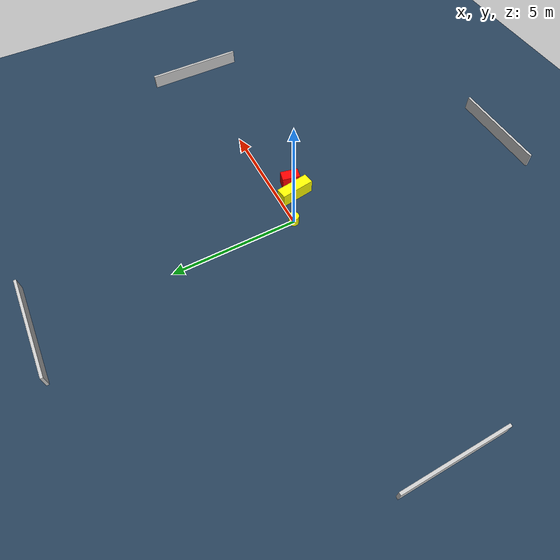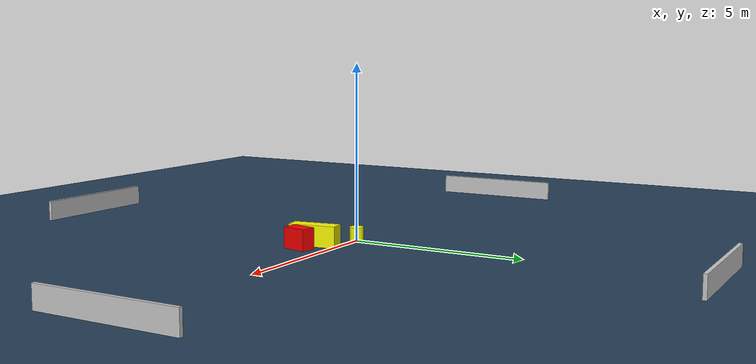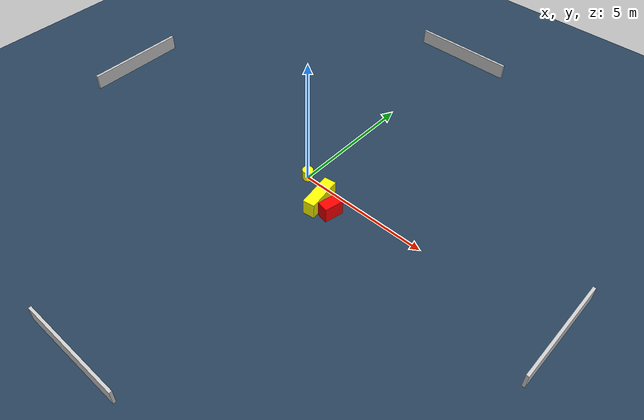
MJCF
<?xml version="1.0" ?>
<mujoco model="generated_environment">
  <option timestep="0.01" integrator="RK4" cone="elliptic"/>
  <default>
    <geom density="1"/>
  </default>
  <asset>
    <texture builtin="gradient" height="3072" name="skybox" rgb1="0.3 0.5 0.7" rgb2="0 0 0" type="skybox" width="512"/>
    <texture builtin="checker" height="300" name="groundplane" rgb1="0.2 0.3 0.4" rgb2="0.1 0.2 0.3" type="2d" width="300"/>
    <material name="groundplane" reflectance="0.2" texrepeat="5 5" texture="groundplane"/>
  </asset>
  <worldbody>
    <light dir="0 0 -1" directional="true" pos="0 0 1.5"/>
    <geom condim="3" friction="0.5 0.005 0.001" material="groundplane" name="floor" pos="0 0 0" size="0 0 0.05" type="plane"/>
    <body name="walls">
      <geom name="wall_1" condim="4" pos="-10.0 0.0 0.3" rgba="0.800000011920929 0.800000011920929 0.800000011920929 1.0" size="0.05 2.0 0.3" type="box"/>
      <geom name="wall_2" condim="4" pos="10.0 0.0 0.3" rgba="0.800000011920929 0.800000011920929 0.800000011920929 1.0" size="0.05 2.0 0.3" type="box"/>
      <geom name="wall_3" condim="4" pos="0.0 -10.0 0.3" rgba="0.800000011920929 0.800000011920929 0.800000011920929 1.0" size="2.0 0.05 0.3" type="box"/>
      <geom name="wall_4" condim="4" pos="0.0 10.0 0.3" rgba="0.800000011920929 0.800000011920929 0.800000011920929 1.0" size="2.0 0.05 0.3" type="box"/>
    </body>
    <body name="robot">
      <joint name="joint_x" type="slide" pos="0 0 0" axis="1 0 0"/>
      <joint name="joint_y" type="slide" pos="0 0 0" axis="0 1 0"/>
      <geom name="robot" type="cylinder" pos="0.0 0.0 0.2" size="0.2 0.2 0.0" mass="5.0" friction="1.0 0.005 0.0001" condim="4" rgba="1.0 1.0 0.0 1.0"/>
    </body>
    <body name="obstacle_1_movable">
      <geom name="obstacle_1_movable" condim="4" pos="1.1618394064512643 -0.6644895973330434 0.3" euler="0 0 8.217167043180243" friction="0.0 0.005 0.001" rgba="1.0 1.0 0.0 1.0" size="0.2247699788388855 0.682599590393564 0.3" type="box" mass="0.1"/>
      <joint type="free"/>
    </body>
    <body name="obstacle_2_static">
      <geom name="obstacle_2_static" condim="4" pos="1.7698697718134397 -0.7757468446121403 0.3" euler="0 0 167.9103688709411" friction="0.0 0.005 0.001" rgba="1.0 0.0 0.0 1.0" size="0.21620730684207734 0.36368816148787486 0.3" type="box"/>
    </body>
  </worldbody>
  <actuator>
    <motor name="actuator_x" joint="joint_x" gear="1" ctrlrange="-1 1"/>
    <motor name="actuator_y" joint="joint_y" gear="1" ctrlrange="-1 1"/>
  </actuator>
</mujoco>
